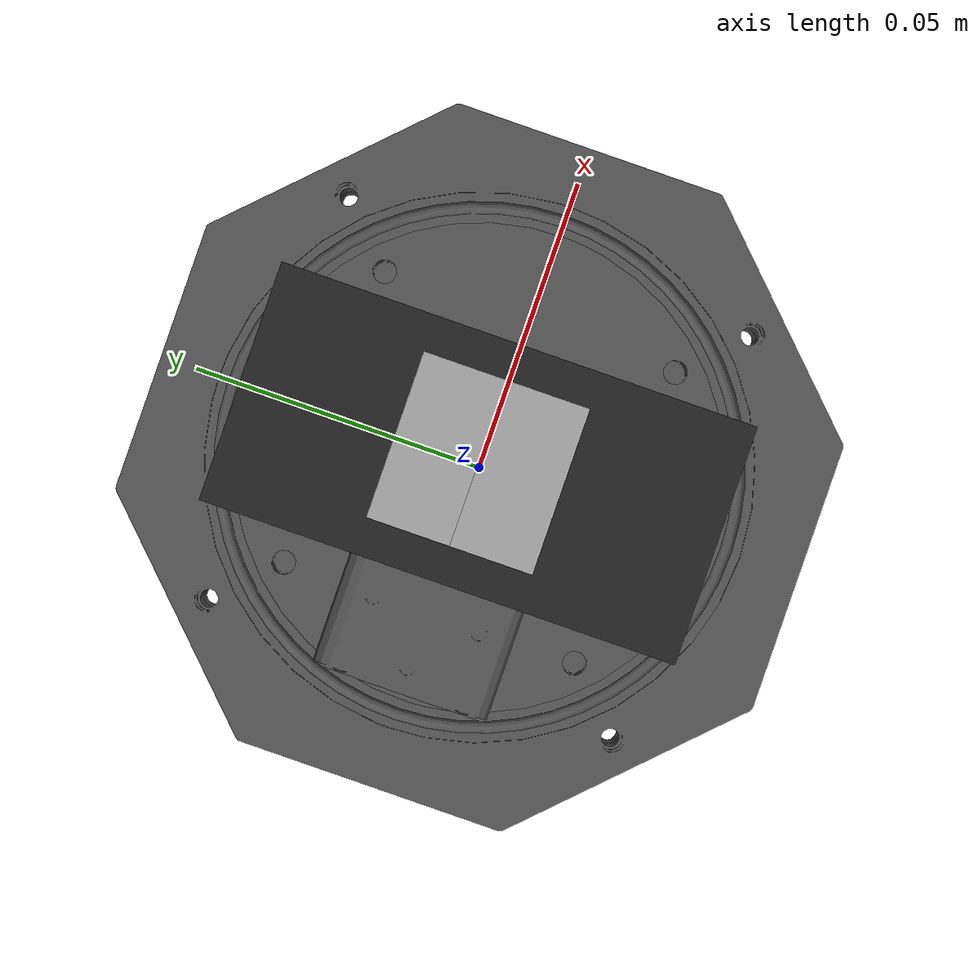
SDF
<sdf version='1.7'>
  <model name='robotic_arm'>
    <link name='base_link'>
      <inertial>
        <pose>-0.000805 -3.1e-05 0.015733 0 -0 0</pose>
        <mass>0.34432</mass>
        <inertia>
          <ixx>0.00026968</ixx>
          <ixy>-2.6656e-10</ixy>
          <ixz>-8.0892e-08</ixz>
          <iyy>0.00027222</iyy>
          <iyz>-9.1152e-11</iyz>
          <izz>0.00052932</izz>
        </inertia>
      </inertial>
      <visual name='base_link_visual'>
        <pose>0 0 0 0 -0 0</pose>
        <geometry>
          <mesh>
            <scale>1 1 1</scale>
            <uri>model://robotic_arm/meshes/base_link.STL</uri>
          </mesh>
        </geometry>
        <material>
          <script>
            <name>Gazebo/DarkGrey</name>
            <uri>file://media/materials/scripts/gazebo.material</uri>
          </script>
        </material>
      </visual>
    </link>
    <joint name='joint_1' type='revolute'>
      <pose relative_to='base_link'>0 0 0.03 0 -0 0</pose>
      <parent>base_link</parent>
      <child>link_1</child>
      <axis>
        <xyz>0 0 -1</xyz>
        <limit>
          <lower>-2.36</lower>
          <upper>2.36</upper>
          <effort>10</effort>
          <velocity>1.5</velocity>
        </limit>
        <dynamics>
          <damping>0.05</damping>
          <friction>0.01</friction>
          <spring_reference>0</spring_reference>
          <spring_stiffness>0</spring_stiffness>
        </dynamics>
      </axis>
      <physics>
        <ode>
          <implicit_spring_damper>1</implicit_spring_damper>
          <cfm_damping>1</cfm_damping>
          <limit>
            <cfm>0</cfm>
            <erp>0.2</erp>
          </limit>
        </ode>
      </physics>
    </joint>
    <link name='link_1'>
      <pose relative_to='joint_1'>0 0 0 0 -0 0</pose>
      <inertial>
        <pose>-2.1e-05 0.000147 0.016563 0 -0 0</pose>
        <mass>0.057604</mass>
        <inertia>
          <ixx>1.8263e-05</ixx>
          <ixy>-3.807e-10</ixy>
          <ixz>-1.4763e-10</ixz>
          <iyy>1.3985e-05</iyy>
          <iyz>-2.922e-08</iyz>
          <izz>2.307e-05</izz>
        </inertia>
      </inertial>
      <visual name='link_1_visual'>
        <pose>0 0 0 0 -0 0</pose>
        <geometry>
          <mesh>
            <scale>1 1 1</scale>
            <uri>model://robotic_arm/meshes/link_1.STL</uri>
          </mesh>
        </geometry>
        <material>
          <script>
            <name>Gazebo/DarkGrey</name>
            <uri>file://media/materials/scripts/gazebo.material</uri>
          </script>
        </material>
      </visual>
    </link>
    <joint name='joint_2' type='revolute'>
      <pose relative_to='link_1'>0.000113 0 0.038401 -1.57079 -1.57079 -3.14159</pose>
      <parent>link_1</parent>
      <child>link_2</child>
      <axis>
        <xyz>0 0 1</xyz>
        <limit>
          <lower>-2.36</lower>
          <upper>2.36</upper>
          <effort>10</effort>
          <velocity>1.5</velocity>
        </limit>
        <dynamics>
          <damping>0.05</damping>
          <friction>0.01</friction>
          <spring_reference>0</spring_reference>
          <spring_stiffness>0</spring_stiffness>
        </dynamics>
      </axis>
      <physics>
        <ode>
          <implicit_spring_damper>1</implicit_spring_damper>
          <cfm_damping>1</cfm_damping>
          <limit>
            <cfm>0</cfm>
            <erp>0.2</erp>
          </limit>
        </ode>
      </physics>
    </joint>
    <link name='link_2'>
      <pose relative_to='joint_2'>0 0 0 0 -0 0</pose>
      <inertial>
        <pose>0.056726 -0 -0.000271 0 -0 0</pose>
        <mass>0.039095</mass>
        <inertia>
          <ixx>1.0114e-05</ixx>
          <ixy>7.2762e-21</ixy>
          <ixz>2.0973e-19</ixz>
          <iyy>1.4176e-05</iyy>
          <iyz>3.677e-21</iyz>
          <izz>7.7479e-06</izz>
        </inertia>
      </inertial>
      <visual name='link_2_visual'>
        <pose>0 0 0 0 -0 0</pose>
        <geometry>
          <mesh>
            <scale>1 1 1</scale>
            <uri>model://robotic_arm/meshes/link_2.STL</uri>
          </mesh>
        </geometry>
        <material>
          <script>
            <name>Gazebo/DarkGrey</name>
            <uri>file://media/materials/scripts/gazebo.material</uri>
          </script>
        </material>
      </visual>
    </link>
    <joint name='joint_3' type='revolute'>
      <pose relative_to='link_2'>0.10507 0 0 0 -0 0</pose>
      <parent>link_2</parent>
      <child>link_3</child>
      <axis>
        <xyz>0 0 1</xyz>
        <limit>
          <lower>-2.36</lower>
          <upper>2.36</upper>
          <effort>10</effort>
          <velocity>1.5</velocity>
        </limit>
        <dynamics>
          <damping>0.05</damping>
          <friction>0.01</friction>
          <spring_reference>0</spring_reference>
          <spring_stiffness>0</spring_stiffness>
        </dynamics>
      </axis>
      <physics>
        <ode>
          <implicit_spring_damper>1</implicit_spring_damper>
          <cfm_damping>1</cfm_damping>
          <limit>
            <cfm>0</cfm>
            <erp>0.2</erp>
          </limit>
        </ode>
      </physics>
    </joint>
    <link name='link_3'>
      <pose relative_to='joint_3'>0 0 0 0 -0 0</pose>
      <inertial>
        <pose>0.043581 -0.000872 -0.000243 0 -0 0</pose>
        <mass>0.075843</mass>
        <inertia>
          <ixx>1.4302e-05</ixx>
          <ixy>2.9527e-10</ixy>
          <ixz>-1.407e-12</ixz>
          <iyy>2.3711e-05</iyy>
          <iyz>-4.2397e-20</iyz>
          <izz>1.4547e-05</izz>
        </inertia>
      </inertial>
      <visual name='link_3_visual'>
        <pose>0 0 0 0 -0 0</pose>
        <geometry>
          <mesh>
            <scale>1 1 1</scale>
            <uri>model://robotic_arm/meshes/link_3.STL</uri>
          </mesh>
        </geometry>
        <material>
          <script>
            <name>Gazebo/DarkGrey</name>
            <uri>file://media/materials/scripts/gazebo.material</uri>
          </script>
        </material>
      </visual>
    </link>
    <joint name='joint_4' type='revolute'>
      <pose relative_to='link_3'>0.087162 -0.000311 -0.000271 0 -0 0</pose>
      <parent>link_3</parent>
      <child>link_4</child>
      <axis>
        <xyz>0 0 1</xyz>
        <limit>
          <lower>-2.36</lower>
          <upper>2.36</upper>
          <effort>10</effort>
          <velocity>1.5</velocity>
        </limit>
        <dynamics>
          <damping>0.05</damping>
          <friction>0.01</friction>
          <spring_reference>0</spring_reference>
          <spring_stiffness>0</spring_stiffness>
        </dynamics>
      </axis>
      <physics>
        <ode>
          <implicit_spring_damper>1</implicit_spring_damper>
          <cfm_damping>1</cfm_damping>
          <limit>
            <cfm>0</cfm>
            <erp>0.2</erp>
          </limit>
        </ode>
      </physics>
    </joint>
    <link name='link_4'>
      <pose relative_to='joint_4'>0 0 0 0 -0 0</pose>
      <inertial>
        <pose>0.044666 0.009062 0.000129 0 -0 0</pose>
        <mass>0.038113</mass>
        <inertia>
          <ixx>7.4825e-06</ixx>
          <ixy>-5.112e-07</ixy>
          <ixz>3.807e-10</ixz>
          <iyy>1.0505e-05</iyy>
          <iyz>-1.4763e-10</iyz>
          <izz>1.2542e-05</izz>
        </inertia>
      </inertial>
      <visual name='link_4_visual'>
        <pose>0 0 0 0 -0 0</pose>
        <geometry>
          <mesh>
            <scale>1 1 1</scale>
            <uri>model://robotic_arm/meshes/link_4.STL</uri>
          </mesh>
        </geometry>
        <material>
          <script>
            <name>Gazebo/DarkGrey</name>
            <uri>file://media/materials/scripts/gazebo.material</uri>
          </script>
        </material>
      </visual>
    </link>
    <joint name='joint_5' type='revolute'>
      <pose relative_to='link_4'>0.073 0 0 -1.5708 -0 -1.5708</pose>
      <parent>link_4</parent>
      <child>link_5</child>
      <axis>
        <xyz>0 0 -1</xyz>
        <limit>
          <lower>-2.36</lower>
          <upper>2.36</upper>
          <effort>10</effort>
          <velocity>1.5</velocity>
        </limit>
        <dynamics>
          <damping>0.05</damping>
          <friction>0.01</friction>
          <spring_reference>0</spring_reference>
          <spring_stiffness>0</spring_stiffness>
        </dynamics>
      </axis>
      <physics>
        <ode>
          <implicit_spring_damper>1</implicit_spring_damper>
          <cfm_damping>1</cfm_damping>
          <limit>
            <cfm>0</cfm>
            <erp>0.2</erp>
          </limit>
        </ode>
      </physics>
    </joint>

<!-- ================= 合并了夹爪基座的 link_5 ================= -->
    <link name='link_5'>
      <pose relative_to='joint_5'>0 0 0 0 -0 0</pose>
      <inertial>
        <!-- 稍微上移重心，合并了基座的10g和原来link5的10g -->
        <pose>0 0 0.01 0 -0 0</pose>
        <mass>0.02</mass>
        <!-- 【核心修复】将极度微小的 1.9e-08 提升到安全的 1e-05，彻底解决抽风和撕裂 -->
        <inertia>
          <ixx>1e-05</ixx><ixy>0</ixy><ixz>0</ixz>
          <iyy>1e-05</iyy><iyz>0</iyz><izz>1e-05</izz>
        </inertia>
      </inertial>

      <!-- 1. 原来 link_5 的微小网格视觉 -->
      <visual name='link_5_visual'>
        <pose>0 0 0 0 -0 0</pose>
        <geometry>
          <mesh>
            <scale>1 1 1</scale>
            <uri>model://robotic_arm/meshes/link_5.STL</uri>
          </mesh>
        </geometry>
        <material>
          <script>
            <name>Gazebo/DarkGrey</name>
            <uri>file://media/materials/scripts/gazebo.material</uri>
          </script>
        </material>
      </visual>

      <!-- 2. 追加：夹爪基座的视觉，直接作为 link_5 的一部分 -->
      <!-- Z=0.02 是 40mm 高度基座的中心 -->
      <visual name='gripper_base_visual'>
        <pose>0 0 0.02 0 0 0</pose>
        <geometry><box><size>0.03 0.06 0.04</size></box></geometry>
        <material>
          <script>
            <name>Gazebo/Black</name>
            <uri>file://media/materials/scripts/gazebo.material</uri>
          </script>
        </material>
      </visual>
      <!-- (基座碰撞暂不添加，保持你说的删除碰撞防抽风状态) -->
    </link>

    <!-- ================= 左侧手指 (直接连在 link_5 上) ================= -->
    <joint name='left_finger_joint' type='prismatic'>
      <!-- 关节直接挂在 link_5 的 Z=0.04(基座顶部) 位置 -->
      <pose relative_to='link_5'>0 0.005 0.04 0 0 0</pose>
      <parent>link_5</parent>
      <child>left_finger</child>
      <axis>
        <xyz>0 1 0</xyz>
        <limit>
          <lower>0</lower>
          <upper>0.03</upper>
          <effort>1.0</effort> <!-- 仅需极小力矩驱动 -->
          <velocity>0.2</velocity>
        </limit>
        <dynamics><damping>0.1</damping><friction>0.05</friction></dynamics>
      </axis>
      <physics>
        <ode>
          <implicit_spring_damper>1</implicit_spring_damper>
          <cfm_damping>1</cfm_damping>
        </ode>
      </physics>
    </joint>

    <link name='left_finger'>
      <!-- 手指长 42mm，从关节再向上延伸 21mm 为中心 -->
      <pose relative_to='left_finger_joint'>0 0 0.021 0 0 0</pose>
      <inertial>
        <mass>0.005</mass>
        <inertia>
          <ixx>1e-05</ixx><ixy>0</ixy><ixz>0</ixz>
          <iyy>1e-05</iyy><iyz>0</iyz><izz>1e-05</izz>
        </inertia>
      </inertial>
      <visual name='left_finger_visual'>
        <geometry><box><size>0.02 0.01 0.042</size></box></geometry>
        <material>
          <script>
            <name>Gazebo/Grey</name>
            <uri>file://media/materials/scripts/gazebo.material</uri>
          </script>
        </material>
      </visual>
    </link>

    <!-- ================= 右侧手指 (直接连在 link_5 上) ================= -->
    <joint name='right_finger_joint' type='prismatic'>
      <pose relative_to='link_5'>0 -0.005 0.04 0 0 0</pose>
      <parent>link_5</parent>
      <child>right_finger</child>
      <axis>
        <xyz>0 -1 0</xyz>
        <limit>
          <lower>0</lower>
          <upper>0.03</upper>
          <effort>1.0</effort>
          <velocity>0.2</velocity>
        </limit>
        <dynamics><damping>0.1</damping><friction>0.05</friction></dynamics>
      </axis>
      <physics>
        <ode>
          <implicit_spring_damper>1</implicit_spring_damper>
          <cfm_damping>1</cfm_damping>
        </ode>
      </physics>
    </joint>

    <link name='right_finger'>
      <pose relative_to='right_finger_joint'>0 0 0.021 0 0 0</pose>
      <inertial>
        <mass>0.005</mass>
        <inertia>
          <ixx>1e-05</ixx><ixy>0</ixy><ixz>0</ixz>
          <iyy>1e-05</iyy><iyz>0</iyz><izz>1e-05</izz>
        </inertia>
      </inertial>
      <visual name='right_finger_visual'>
        <geometry><box><size>0.02 0.01 0.042</size></box></geometry>
        <material>
          <script>
            <name>Gazebo/Grey</name>
            <uri>file://media/materials/scripts/gazebo.material</uri>
          </script>
        </material>
      </visual>
    </link>

    <frame name='flange_to_tool0' attached_to='link_5'>
      <pose>0 0 0 0 -0 0</pose>
    </frame>
    <frame name='tool0' attached_to='flange_to_tool0'/>
  </model>
</sdf>
